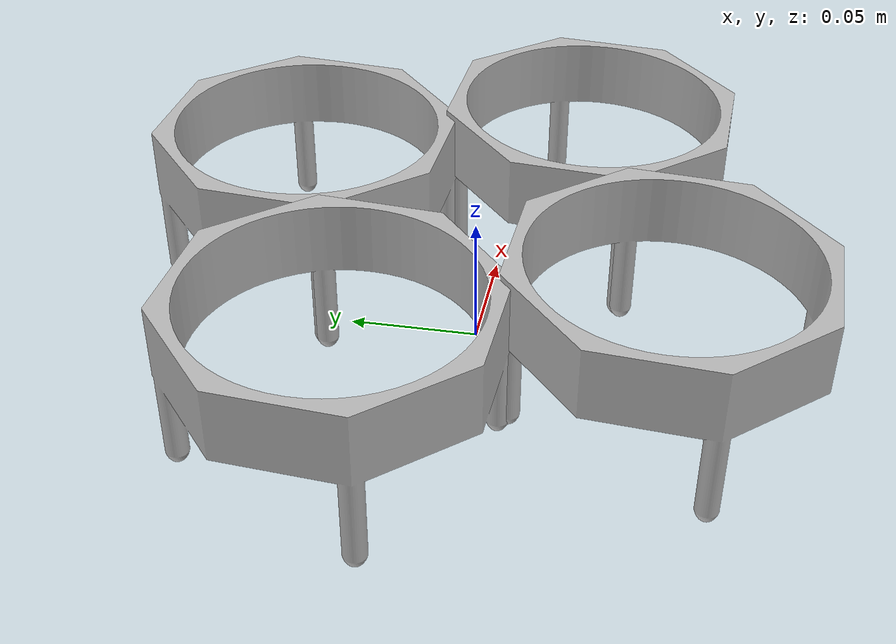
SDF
<?xml version='1.0'?>
<sdf version='1.6'>
  <model name='4square'>
      <link name='mountlink_1'>
        <collision name='coll'>
          <pose frame=''>0 0 0 0 -0 0</pose>
          <geometry>
            <mesh>
              <uri>model://mount/meshes/mount_collision.dae</uri>
            </mesh>
          </geometry>
        </collision>
        <inertial>
          <pose frame=''>0 0 0 0 -0 0</pose>
          <inertia>
          <ixx>0.00055873</ixx>
          <ixy>0.0000</ixy>
          <ixz>0.00000</ixz>
          <iyy>0.00055873</iyy>
          <iyz>0.00000/iyz></iyz>
          <izz>0.0010789</izz>
          </inertia>
          <mass>0.028</mass>
        </inertial>
        <visual name='mountvisual'>
          <pose frame=''>0 0 0 0 -0 0</pose>
          <geometry>
            <mesh>
              <uri>model://mount/meshes/mount.dae</uri>
            </mesh>
          </geometry>
        </visual>
        <pose frame=''>-0.03385 -0.073611 0 0 -0 0</pose>
      </link>
      <link name='mountlink_2'>
        <collision name='coll'>
          <pose frame=''>0 0 0 0 -0 0</pose>
          <geometry>
            <mesh>
              <uri>model://mount/meshes/mount_collision.dae</uri>
            </mesh>
          </geometry>
        </collision>
        <inertial>
          <pose frame=''>0 0 0 0 -0 0</pose>
          <inertia>
          <ixx>0.00055873</ixx>
          <ixy>0.0000</ixy>
          <ixz>0.00000</ixz>
          <iyy>0.00055873</iyy>
          <iyz>0.00000/iyz></iyz>
          <izz>0.0010789</izz>
          </inertia>
          <mass>0.028</mass>
        </inertial>
        <visual name='mountvisual'>
          <pose frame=''>0 0 0 0 -0 0</pose>
          <geometry>
            <mesh>
              <uri>model://mount/meshes/mount.dae</uri>
            </mesh>
          </geometry>
        </visual>
        <pose frame=''>-0.073511 0.034357 -0 0 -0 0</pose>
      </link>
      <link name='mountlink_3'>
        <collision name='coll'>
          <pose frame=''>0 0 0 0 -0 0</pose>
          <geometry>
            <mesh>
              <uri>model://mount/meshes/mount_collision.dae</uri>
            </mesh>
          </geometry>
        </collision>
        <inertial>
          <pose frame=''>0 0 0 0 -0 0</pose>
          <inertia>
          <ixx>0.00055873</ixx>
          <ixy>0.0000</ixy>
          <ixz>0.00000</ixz>
          <iyy>0.00055873</iyy>
          <iyz>0.00000/iyz></iyz>
          <izz>0.0010789</izz>
          </inertia>
          <mass>0.028</mass>
        </inertial>
        <visual name='mountvisual'>
          <pose frame=''>0 0 0 0 -0 0</pose>
          <geometry>
            <mesh>
              <uri>model://mount/meshes/mount.dae</uri>
            </mesh>
          </geometry>
        </visual>
        <pose frame=''>0.073537 -0.034584 0.003 0 -0 0</pose>
      </link>
      <link name='mountlink_4'>
        <collision name='coll'>
          <pose frame=''>0 0 0 0 -0 0</pose>
          <geometry>
            <mesh>
              <uri>model://mount/meshes/mount_collision.dae</uri>
            </mesh>
          </geometry>
        </collision>
        <inertial>
          <pose frame=''>0 0 0 0 -0 0</pose>
          <inertia>
          <ixx>0.00055873</ixx>
          <ixy>0.0000</ixy>
          <ixz>0.00000</ixz>
          <iyy>0.00055873</iyy>
          <iyz>0.00000/iyz></iyz>
          <izz>0.0010789</izz>
          </inertia>
          <mass>0.028</mass>
        </inertial>
        <visual name='mountvisual'>
          <pose frame=''>0 0 0 0 -0 0</pose>
          <geometry>
            <mesh>
              <uri>model://mount/meshes/mount.dae</uri>
            </mesh>
          </geometry>
        </visual>
        <pose frame=''>0.033824 0.07384 0.003 0 -0 0</pose>
      </link>
    <joint name='mountlink_JOINT_3' type='fixed'>
      <parent>mountlink_1</parent>
      <child>mountlink_2</child>
      <pose frame=''>0 0 0 0 -0 0</pose>
      <physics>
        <ode>
          <limit>
            <cfm>0</cfm>
            <erp>0.2</erp>
          </limit>
          <suspension>
            <cfm>0</cfm>
            <erp>0.2</erp>
          </suspension>
        </ode>
      </physics>
    </joint>
    <joint name='mountlink_JOINT_2' type='fixed'>
      <parent>mountlink_2</parent>
      <child>mountlink_3</child>
      <pose frame=''>0 0 0 0 -0 0</pose>
      <physics>
        <ode>
          <limit>
            <cfm>0</cfm>
            <erp>0.2</erp>
          </limit>
          <suspension>
            <cfm>0</cfm>
            <erp>0.2</erp>
          </suspension>
        </ode>
      </physics>
    </joint>
    <joint name='mountlink_JOINT_0' type='fixed'>
      <parent>mountlink_3</parent>
      <child>mountlink_4</child>
      <pose frame=''>0 0 0 0 -0 0</pose>
      <physics>
        <ode>
          <limit>
            <cfm>0</cfm>
            <erp>0.2</erp>
          </limit>
          <suspension>
            <cfm>0</cfm>
            <erp>0.2</erp>
          </suspension>
        </ode>
      </physics>
    </joint>
    <joint name='mountlink_JOINT_1' type='fixed'>
      <parent>mountlink_4</parent>
      <child>mountlink_1</child>
      <pose frame=''>0 0 0 0 -0 0</pose>
      <physics>
        <ode>
          <limit>
            <cfm>0</cfm>
            <erp>0.2</erp>
          </limit>
          <suspension>
            <cfm>0</cfm>
            <erp>0.2</erp>
          </suspension>
        </ode>
      </physics>
    </joint>
    <joint name='mountlink_JOINT_1_2' type='fixed'>
      <parent>mountlink_4</parent>
      <child>mountlink_2</child>
      <pose frame=''>0 0 0 0 -0 0</pose>
      <physics>
        <ode>
          <limit>
            <cfm>0</cfm>
            <erp>0.2</erp>
          </limit>
          <suspension>
            <cfm>0</cfm>
            <erp>0.2</erp>
          </suspension>
        </ode>
      </physics>
    </joint>
    <joint name='mountlink_JOINT_1_3' type='fixed'>
      <parent>mountlink_3</parent>
      <child>mountlink_1</child>
      <pose frame=''>0 0 0 0 -0 0</pose>
      <physics>
        <ode>
          <limit>
            <cfm>0</cfm>
            <erp>0.2</erp>
          </limit>
          <suspension>
            <cfm>0</cfm>
            <erp>0.2</erp>
          </suspension>
        </ode>
      </physics>
    </joint>
    <static>0</static>
    <allow_auto_disable>1</allow_auto_disable>
  </model>
</sdf>
